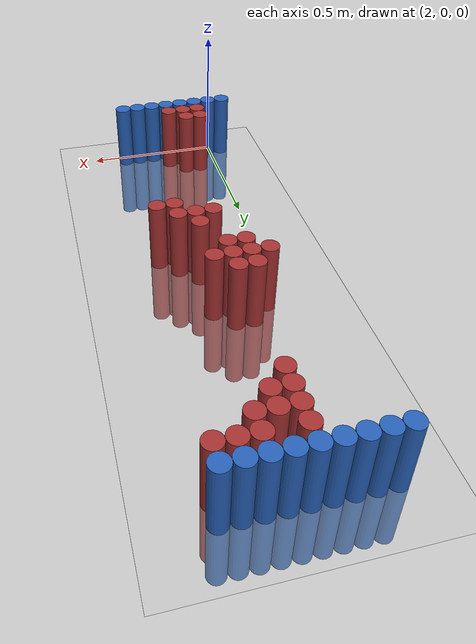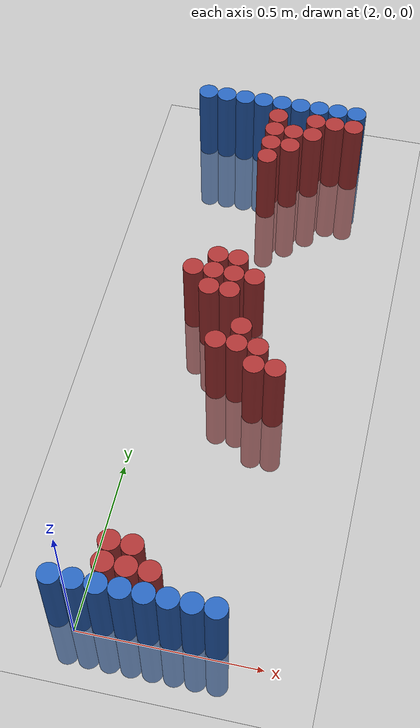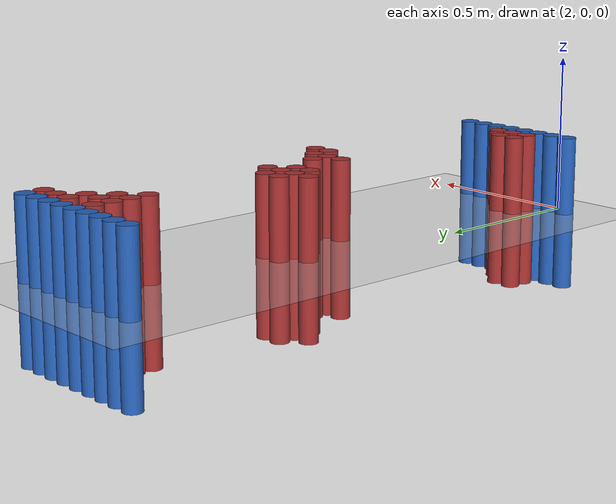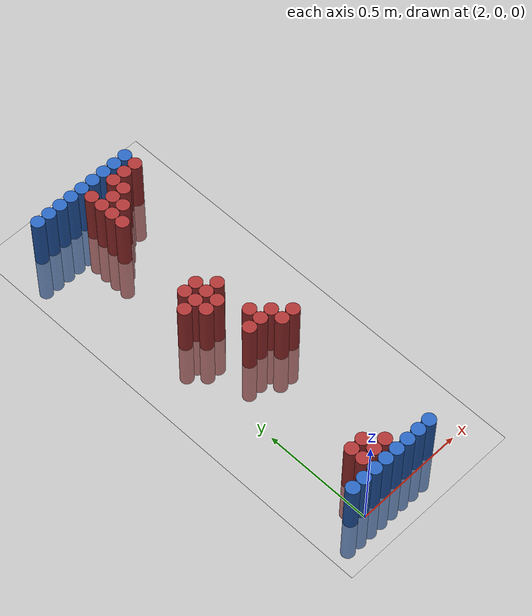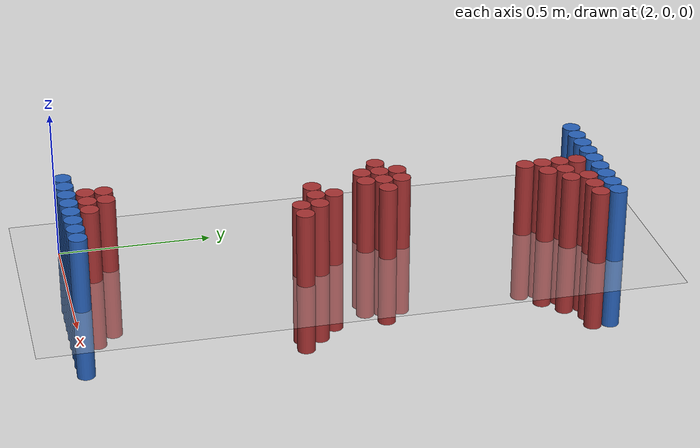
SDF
<sdf version="1.6">
 <world name="default">
  <model name="ground_plane">
   <static>1</static>
   <link name="link">
    <collision name="collision">
     <geometry><plane><normal>0 0 1</normal><size>100 100</size></plane></geometry>
     <surface><friction><ode><mu>100</mu><mu2>50</mu2></ode></friction></surface>
    </collision>
    <visual name="visual">
     <cast_shadows>0</cast_shadows>
     <geometry><plane><normal>0 0 1</normal><size>100 100</size></plane></geometry>
     <material>
      <script><uri>file://media/materials/scripts/gazebo.material</uri><name>Gazebo/Grey</name></script>
     </material>
    </visual>
   </link>
  </model>
  <model name="unit_cylinder_91">
   <static>1</static>
   <pose>1.950000 0.030000 0.000000 0.000000 0.000000 0.000000</pose>
   <link name="link">
    <inertial>
     <mass>1</mass>
     <inertia><ixx>0.145833</ixx><ixy>0</ixy><ixz>0</ixz><iyy>0.145833</iyy><iyz>0</iyz><izz>0.125</izz></inertia>
    </inertial>
    <collision name="collision">
     <geometry><cylinder><radius>0.030000</radius><length>0.5</length></cylinder></geometry>
    </collision>
    <visual name="visual">
     <geometry><cylinder><radius>0.030000</radius><length>0.5</length></cylinder></geometry>
     <material>
      <ambient>0.152000 0.379000 0.720000 1</ambient>
      <diffuse>0.152000 0.379000 0.720000 1</diffuse>
     </material>
     <material>
      <script><name>Gazebo/Grey</name><uri>file://media/materials/scripts/gazebo.material</uri></script>
     </material>
    </visual>
   </link>
  </model>
  <model name="unit_cylinder_92">
   <static>1</static>
   <pose>1.950000 1.770000 0.000000 0.000000 0.000000 0.000000</pose>
   <link name="link">
    <inertial>
     <mass>1</mass>
     <inertia><ixx>0.145833</ixx><ixy>0</ixy><ixz>0</ixz><iyy>0.145833</iyy><iyz>0</iyz><izz>0.125</izz></inertia>
    </inertial>
    <collision name="collision">
     <geometry><cylinder><radius>0.030000</radius><length>0.5</length></cylinder></geometry>
    </collision>
    <visual name="visual">
     <geometry><cylinder><radius>0.030000</radius><length>0.5</length></cylinder></geometry>
     <material>
      <ambient>0.152000 0.379000 0.720000 1</ambient>
      <diffuse>0.152000 0.379000 0.720000 1</diffuse>
     </material>
     <material>
      <script><name>Gazebo/Grey</name><uri>file://media/materials/scripts/gazebo.material</uri></script>
     </material>
    </visual>
   </link>
  </model>
  <model name="unit_cylinder_93">
   <static>1</static>
   <pose>2.010000 0.030000 0.000000 0.000000 0.000000 0.000000</pose>
   <link name="link">
    <inertial>
     <mass>1</mass>
     <inertia><ixx>0.145833</ixx><ixy>0</ixy><ixz>0</ixz><iyy>0.145833</iyy><iyz>0</iyz><izz>0.125</izz></inertia>
    </inertial>
    <collision name="collision">
     <geometry><cylinder><radius>0.030000</radius><length>0.5</length></cylinder></geometry>
    </collision>
    <visual name="visual">
     <geometry><cylinder><radius>0.030000</radius><length>0.5</length></cylinder></geometry>
     <material>
      <ambient>0.152000 0.379000 0.720000 1</ambient>
      <diffuse>0.152000 0.379000 0.720000 1</diffuse>
     </material>
     <material>
      <script><name>Gazebo/Grey</name><uri>file://media/materials/scripts/gazebo.material</uri></script>
     </material>
    </visual>
   </link>
  </model>
  <model name="unit_cylinder_94">
   <static>1</static>
   <pose>2.010000 1.770000 0.000000 0.000000 0.000000 0.000000</pose>
   <link name="link">
    <inertial>
     <mass>1</mass>
     <inertia><ixx>0.145833</ixx><ixy>0</ixy><ixz>0</ixz><iyy>0.145833</iyy><iyz>0</iyz><izz>0.125</izz></inertia>
    </inertial>
    <collision name="collision">
     <geometry><cylinder><radius>0.030000</radius><length>0.5</length></cylinder></geometry>
    </collision>
    <visual name="visual">
     <geometry><cylinder><radius>0.030000</radius><length>0.5</length></cylinder></geometry>
     <material>
      <ambient>0.152000 0.379000 0.720000 1</ambient>
      <diffuse>0.152000 0.379000 0.720000 1</diffuse>
     </material>
     <material>
      <script><name>Gazebo/Grey</name><uri>file://media/materials/scripts/gazebo.material</uri></script>
     </material>
    </visual>
   </link>
  </model>
  <model name="unit_cylinder_95">
   <static>1</static>
   <pose>2.070000 1.770000 0.000000 0.000000 0.000000 0.000000</pose>
   <link name="link">
    <inertial>
     <mass>1</mass>
     <inertia><ixx>0.145833</ixx><ixy>0</ixy><ixz>0</ixz><iyy>0.145833</iyy><iyz>0</iyz><izz>0.125</izz></inertia>
    </inertial>
    <collision name="collision">
     <geometry><cylinder><radius>0.030000</radius><length>0.5</length></cylinder></geometry>
    </collision>
    <visual name="visual">
     <geometry><cylinder><radius>0.030000</radius><length>0.5</length></cylinder></geometry>
     <material>
      <ambient>0.152000 0.379000 0.720000 1</ambient>
      <diffuse>0.152000 0.379000 0.720000 1</diffuse>
     </material>
     <material>
      <script><name>Gazebo/Grey</name><uri>file://media/materials/scripts/gazebo.material</uri></script>
     </material>
    </visual>
   </link>
  </model>
  <model name="unit_cylinder_96">
   <static>1</static>
   <pose>2.130000 1.770000 0.000000 0.000000 0.000000 0.000000</pose>
   <link name="link">
    <inertial>
     <mass>1</mass>
     <inertia><ixx>0.145833</ixx><ixy>0</ixy><ixz>0</ixz><iyy>0.145833</iyy><iyz>0</iyz><izz>0.125</izz></inertia>
    </inertial>
    <collision name="collision">
     <geometry><cylinder><radius>0.030000</radius><length>0.5</length></cylinder></geometry>
    </collision>
    <visual name="visual">
     <geometry><cylinder><radius>0.030000</radius><length>0.5</length></cylinder></geometry>
     <material>
      <ambient>0.152000 0.379000 0.720000 1</ambient>
      <diffuse>0.152000 0.379000 0.720000 1</diffuse>
     </material>
     <material>
      <script><name>Gazebo/Grey</name><uri>file://media/materials/scripts/gazebo.material</uri></script>
     </material>
    </visual>
   </link>
  </model>
  <model name="unit_cylinder_97">
   <static>1</static>
   <pose>2.190000 1.770000 0.000000 0.000000 0.000000 0.000000</pose>
   <link name="link">
    <inertial>
     <mass>1</mass>
     <inertia><ixx>0.145833</ixx><ixy>0</ixy><ixz>0</ixz><iyy>0.145833</iyy><iyz>0</iyz><izz>0.125</izz></inertia>
    </inertial>
    <collision name="collision">
     <geometry><cylinder><radius>0.030000</radius><length>0.5</length></cylinder></geometry>
    </collision>
    <visual name="visual">
     <geometry><cylinder><radius>0.030000</radius><length>0.5</length></cylinder></geometry>
     <material>
      <ambient>0.152000 0.379000 0.720000 1</ambient>
      <diffuse>0.152000 0.379000 0.720000 1</diffuse>
     </material>
     <material>
      <script><name>Gazebo/Grey</name><uri>file://media/materials/scripts/gazebo.material</uri></script>
     </material>
    </visual>
   </link>
  </model>
  <model name="unit_cylinder_98">
   <static>1</static>
   <pose>2.250000 1.770000 0.000000 0.000000 0.000000 0.000000</pose>
   <link name="link">
    <inertial>
     <mass>1</mass>
     <inertia><ixx>0.145833</ixx><ixy>0</ixy><ixz>0</ixz><iyy>0.145833</iyy><iyz>0</iyz><izz>0.125</izz></inertia>
    </inertial>
    <collision name="collision">
     <geometry><cylinder><radius>0.030000</radius><length>0.5</length></cylinder></geometry>
    </collision>
    <visual name="visual">
     <geometry><cylinder><radius>0.030000</radius><length>0.5</length></cylinder></geometry>
     <material>
      <ambient>0.152000 0.379000 0.720000 1</ambient>
      <diffuse>0.152000 0.379000 0.720000 1</diffuse>
     </material>
     <material>
      <script><name>Gazebo/Grey</name><uri>file://media/materials/scripts/gazebo.material</uri></script>
     </material>
    </visual>
   </link>
  </model>
  <model name="unit_cylinder_99">
   <static>1</static>
   <pose>2.310000 1.770000 0.000000 0.000000 0.000000 0.000000</pose>
   <link name="link">
    <inertial>
     <mass>1</mass>
     <inertia><ixx>0.145833</ixx><ixy>0</ixy><ixz>0</ixz><iyy>0.145833</iyy><iyz>0</iyz><izz>0.125</izz></inertia>
    </inertial>
    <collision name="collision">
     <geometry><cylinder><radius>0.030000</radius><length>0.5</length></cylinder></geometry>
    </collision>
    <visual name="visual">
     <geometry><cylinder><radius>0.030000</radius><length>0.5</length></cylinder></geometry>
     <material>
      <ambient>0.152000 0.379000 0.720000 1</ambient>
      <diffuse>0.152000 0.379000 0.720000 1</diffuse>
     </material>
     <material>
      <script><name>Gazebo/Grey</name><uri>file://media/materials/scripts/gazebo.material</uri></script>
     </material>
    </visual>
   </link>
  </model>
  <model name="unit_cylinder_100">
   <static>1</static>
   <pose>2.370000 1.770000 0.000000 0.000000 0.000000 0.000000</pose>
   <link name="link">
    <inertial>
     <mass>1</mass>
     <inertia><ixx>0.145833</ixx><ixy>0</ixy><ixz>0</ixz><iyy>0.145833</iyy><iyz>0</iyz><izz>0.125</izz></inertia>
    </inertial>
    <collision name="collision">
     <geometry><cylinder><radius>0.030000</radius><length>0.5</length></cylinder></geometry>
    </collision>
    <visual name="visual">
     <geometry><cylinder><radius>0.030000</radius><length>0.5</length></cylinder></geometry>
     <material>
      <ambient>0.152000 0.379000 0.720000 1</ambient>
      <diffuse>0.152000 0.379000 0.720000 1</diffuse>
     </material>
     <material>
      <script><name>Gazebo/Grey</name><uri>file://media/materials/scripts/gazebo.material</uri></script>
     </material>
    </visual>
   </link>
  </model>
  <model name="unit_cylinder_101">
   <static>1</static>
   <pose>2.430000 1.770000 0.000000 0.000000 0.000000 0.000000</pose>
   <link name="link">
    <inertial>
     <mass>1</mass>
     <inertia><ixx>0.145833</ixx><ixy>0</ixy><ixz>0</ixz><iyy>0.145833</iyy><iyz>0</iyz><izz>0.125</izz></inertia>
    </inertial>
    <collision name="collision">
     <geometry><cylinder><radius>0.030000</radius><length>0.5</length></cylinder></geometry>
    </collision>
    <visual name="visual">
     <geometry><cylinder><radius>0.030000</radius><length>0.5</length></cylinder></geometry>
     <material>
      <ambient>0.152000 0.379000 0.720000 1</ambient>
      <diffuse>0.152000 0.379000 0.720000 1</diffuse>
     </material>
     <material>
      <script><name>Gazebo/Grey</name><uri>file://media/materials/scripts/gazebo.material</uri></script>
     </material>
    </visual>
   </link>
  </model>
  <model name="unit_cylinder_125">
   <static>1</static>
   <pose>2.190000 1.710000 0.000000 0.000000 0.000000 0.000000</pose>
   <link name="link">
    <inertial>
     <mass>1</mass>
     <inertia><ixx>0.145833</ixx><ixy>0</ixy><ixz>0</ixz><iyy>0.145833</iyy><iyz>0</iyz><izz>0.125</izz></inertia>
    </inertial>
    <collision name="collision">
     <geometry><cylinder><radius>0.030000</radius><length>0.5</length></cylinder></geometry>
    </collision>
    <visual name="visual">
     <geometry><cylinder><radius>0.030000</radius><length>0.5</length></cylinder></geometry>
     <material>
      <ambient>0.648000 0.192000 0.192000 1</ambient>
      <diffuse>0.648000 0.192000 0.192000 1</diffuse>
     </material>
     <material>
      <script><name>Gazebo/Grey</name><uri>file://media/materials/scripts/gazebo.material</uri></script>
     </material>
    </visual>
   </link>
  </model>
  <model name="unit_cylinder_126">
   <static>1</static>
   <pose>2.310000 1.710000 0.000000 0.000000 0.000000 0.000000</pose>
   <link name="link">
    <inertial>
     <mass>1</mass>
     <inertia><ixx>0.145833</ixx><ixy>0</ixy><ixz>0</ixz><iyy>0.145833</iyy><iyz>0</iyz><izz>0.125</izz></inertia>
    </inertial>
    <collision name="collision">
     <geometry><cylinder><radius>0.030000</radius><length>0.5</length></cylinder></geometry>
    </collision>
    <visual name="visual">
     <geometry><cylinder><radius>0.030000</radius><length>0.5</length></cylinder></geometry>
     <material>
      <ambient>0.648000 0.192000 0.192000 1</ambient>
      <diffuse>0.648000 0.192000 0.192000 1</diffuse>
     </material>
     <material>
      <script><name>Gazebo/Grey</name><uri>file://media/materials/scripts/gazebo.material</uri></script>
     </material>
    </visual>
   </link>
  </model>
  <model name="unit_cylinder_127">
   <static>1</static>
   <pose>2.370000 1.710000 0.000000 0.000000 0.000000 0.000000</pose>
   <link name="link">
    <inertial>
     <mass>1</mass>
     <inertia><ixx>0.145833</ixx><ixy>0</ixy><ixz>0</ixz><iyy>0.145833</iyy><iyz>0</iyz><izz>0.125</izz></inertia>
    </inertial>
    <collision name="collision">
     <geometry><cylinder><radius>0.030000</radius><length>0.5</length></cylinder></geometry>
    </collision>
    <visual name="visual">
     <geometry><cylinder><radius>0.030000</radius><length>0.5</length></cylinder></geometry>
     <material>
      <ambient>0.648000 0.192000 0.192000 1</ambient>
      <diffuse>0.648000 0.192000 0.192000 1</diffuse>
     </material>
     <material>
      <script><name>Gazebo/Grey</name><uri>file://media/materials/scripts/gazebo.material</uri></script>
     </material>
    </visual>
   </link>
  </model>
  <model name="unit_cylinder_128">
   <static>1</static>
   <pose>2.430000 1.710000 0.000000 0.000000 0.000000 0.000000</pose>
   <link name="link">
    <inertial>
     <mass>1</mass>
     <inertia><ixx>0.145833</ixx><ixy>0</ixy><ixz>0</ixz><iyy>0.145833</iyy><iyz>0</iyz><izz>0.125</izz></inertia>
    </inertial>
    <collision name="collision">
     <geometry><cylinder><radius>0.030000</radius><length>0.5</length></cylinder></geometry>
    </collision>
    <visual name="visual">
     <geometry><cylinder><radius>0.030000</radius><length>0.5</length></cylinder></geometry>
     <material>
      <ambient>0.648000 0.192000 0.192000 1</ambient>
      <diffuse>0.648000 0.192000 0.192000 1</diffuse>
     </material>
     <material>
      <script><name>Gazebo/Grey</name><uri>file://media/materials/scripts/gazebo.material</uri></script>
     </material>
    </visual>
   </link>
  </model>
  <model name="unit_cylinder_142">
   <static>1</static>
   <pose>2.190000 1.650000 0.000000 0.000000 0.000000 0.000000</pose>
   <link name="link">
    <inertial>
     <mass>1</mass>
     <inertia><ixx>0.145833</ixx><ixy>0</ixy><ixz>0</ixz><iyy>0.145833</iyy><iyz>0</iyz><izz>0.125</izz></inertia>
    </inertial>
    <collision name="collision">
     <geometry><cylinder><radius>0.030000</radius><length>0.5</length></cylinder></geometry>
    </collision>
    <visual name="visual">
     <geometry><cylinder><radius>0.030000</radius><length>0.5</length></cylinder></geometry>
     <material>
      <ambient>0.648000 0.192000 0.192000 1</ambient>
      <diffuse>0.648000 0.192000 0.192000 1</diffuse>
     </material>
     <material>
      <script><name>Gazebo/Grey</name><uri>file://media/materials/scripts/gazebo.material</uri></script>
     </material>
    </visual>
   </link>
  </model>
  <model name="unit_cylinder_143">
   <static>1</static>
   <pose>2.250000 1.650000 0.000000 0.000000 0.000000 0.000000</pose>
   <link name="link">
    <inertial>
     <mass>1</mass>
     <inertia><ixx>0.145833</ixx><ixy>0</ixy><ixz>0</ixz><iyy>0.145833</iyy><iyz>0</iyz><izz>0.125</izz></inertia>
    </inertial>
    <collision name="collision">
     <geometry><cylinder><radius>0.030000</radius><length>0.5</length></cylinder></geometry>
    </collision>
    <visual name="visual">
     <geometry><cylinder><radius>0.030000</radius><length>0.5</length></cylinder></geometry>
     <material>
      <ambient>0.648000 0.192000 0.192000 1</ambient>
      <diffuse>0.648000 0.192000 0.192000 1</diffuse>
     </material>
     <material>
      <script><name>Gazebo/Grey</name><uri>file://media/materials/scripts/gazebo.material</uri></script>
     </material>
    </visual>
   </link>
  </model>
  <model name="unit_cylinder_144">
   <static>1</static>
   <pose>2.310000 1.650000 0.000000 0.000000 0.000000 0.000000</pose>
   <link name="link">
    <inertial>
     <mass>1</mass>
     <inertia><ixx>0.145833</ixx><ixy>0</ixy><ixz>0</ixz><iyy>0.145833</iyy><iyz>0</iyz><izz>0.125</izz></inertia>
    </inertial>
    <collision name="collision">
     <geometry><cylinder><radius>0.030000</radius><length>0.5</length></cylinder></geometry>
    </collision>
    <visual name="visual">
     <geometry><cylinder><radius>0.030000</radius><length>0.5</length></cylinder></geometry>
     <material>
      <ambient>0.648000 0.192000 0.192000 1</ambient>
      <diffuse>0.648000 0.192000 0.192000 1</diffuse>
     </material>
     <material>
      <script><name>Gazebo/Grey</name><uri>file://media/materials/scripts/gazebo.material</uri></script>
     </material>
    </visual>
   </link>
  </model>
  <model name="unit_cylinder_148">
   <static>1</static>
   <pose>2.190000 1.590000 0.000000 0.000000 0.000000 0.000000</pose>
   <link name="link">
    <inertial>
     <mass>1</mass>
     <inertia><ixx>0.145833</ixx><ixy>0</ixy><ixz>0</ixz><iyy>0.145833</iyy><iyz>0</iyz><izz>0.125</izz></inertia>
    </inertial>
    <collision name="collision">
     <geometry><cylinder><radius>0.030000</radius><length>0.5</length></cylinder></geometry>
    </collision>
    <visual name="visual">
     <geometry><cylinder><radius>0.030000</radius><length>0.5</length></cylinder></geometry>
     <material>
      <ambient>0.648000 0.192000 0.192000 1</ambient>
      <diffuse>0.648000 0.192000 0.192000 1</diffuse>
     </material>
     <material>
      <script><name>Gazebo/Grey</name><uri>file://media/materials/scripts/gazebo.material</uri></script>
     </material>
    </visual>
   </link>
  </model>
  <model name="unit_cylinder_149">
   <static>1</static>
   <pose>2.250000 1.590000 0.000000 0.000000 0.000000 0.000000</pose>
   <link name="link">
    <inertial>
     <mass>1</mass>
     <inertia><ixx>0.145833</ixx><ixy>0</ixy><ixz>0</ixz><iyy>0.145833</iyy><iyz>0</iyz><izz>0.125</izz></inertia>
    </inertial>
    <collision name="collision">
     <geometry><cylinder><radius>0.030000</radius><length>0.5</length></cylinder></geometry>
    </collision>
    <visual name="visual">
     <geometry><cylinder><radius>0.030000</radius><length>0.5</length></cylinder></geometry>
     <material>
      <ambient>0.648000 0.192000 0.192000 1</ambient>
      <diffuse>0.648000 0.192000 0.192000 1</diffuse>
     </material>
     <material>
      <script><name>Gazebo/Grey</name><uri>file://media/materials/scripts/gazebo.material</uri></script>
     </material>
    </visual>
   </link>
  </model>
  <model name="unit_cylinder_151">
   <static>1</static>
   <pose>2.190000 1.530000 0.000000 0.000000 0.000000 0.000000</pose>
   <link name="link">
    <inertial>
     <mass>1</mass>
     <inertia><ixx>0.145833</ixx><ixy>0</ixy><ixz>0</ixz><iyy>0.145833</iyy><iyz>0</iyz><izz>0.125</izz></inertia>
    </inertial>
    <collision name="collision">
     <geometry><cylinder><radius>0.030000</radius><length>0.5</length></cylinder></geometry>
    </collision>
    <visual name="visual">
     <geometry><cylinder><radius>0.030000</radius><length>0.5</length></cylinder></geometry>
     <material>
      <ambient>0.648000 0.192000 0.192000 1</ambient>
      <diffuse>0.648000 0.192000 0.192000 1</diffuse>
     </material>
     <material>
      <script><name>Gazebo/Grey</name><uri>file://media/materials/scripts/gazebo.material</uri></script>
     </material>
    </visual>
   </link>
  </model>
  <model name="unit_cylinder_165">
   <static>1</static>
   <pose>2.130000 1.110000 0.000000 0.000000 0.000000 0.000000</pose>
   <link name="link">
    <inertial>
     <mass>1</mass>
     <inertia><ixx>0.145833</ixx><ixy>0</ixy><ixz>0</ixz><iyy>0.145833</iyy><iyz>0</iyz><izz>0.125</izz></inertia>
    </inertial>
    <collision name="collision">
     <geometry><cylinder><radius>0.030000</radius><length>0.5</length></cylinder></geometry>
    </collision>
    <visual name="visual">
     <geometry><cylinder><radius>0.030000</radius><length>0.5</length></cylinder></geometry>
     <material>
      <ambient>0.648000 0.192000 0.192000 1</ambient>
      <diffuse>0.648000 0.192000 0.192000 1</diffuse>
     </material>
     <material>
      <script><name>Gazebo/Grey</name><uri>file://media/materials/scripts/gazebo.material</uri></script>
     </material>
    </visual>
   </link>
  </model>
  <model name="unit_cylinder_166">
   <static>1</static>
   <pose>2.190000 1.110000 0.000000 0.000000 0.000000 0.000000</pose>
   <link name="link">
    <inertial>
     <mass>1</mass>
     <inertia><ixx>0.145833</ixx><ixy>0</ixy><ixz>0</ixz><iyy>0.145833</iyy><iyz>0</iyz><izz>0.125</izz></inertia>
    </inertial>
    <collision name="collision">
     <geometry><cylinder><radius>0.030000</radius><length>0.5</length></cylinder></geometry>
    </collision>
    <visual name="visual">
     <geometry><cylinder><radius>0.030000</radius><length>0.5</length></cylinder></geometry>
     <material>
      <ambient>0.648000 0.192000 0.192000 1</ambient>
      <diffuse>0.648000 0.192000 0.192000 1</diffuse>
     </material>
     <material>
      <script><name>Gazebo/Grey</name><uri>file://media/materials/scripts/gazebo.material</uri></script>
     </material>
    </visual>
   </link>
  </model>
  <model name="unit_cylinder_167">
   <static>1</static>
   <pose>2.070000 1.050000 0.000000 0.000000 0.000000 0.000000</pose>
   <link name="link">
    <inertial>
     <mass>1</mass>
     <inertia><ixx>0.145833</ixx><ixy>0</ixy><ixz>0</ixz><iyy>0.145833</iyy><iyz>0</iyz><izz>0.125</izz></inertia>
    </inertial>
    <collision name="collision">
     <geometry><cylinder><radius>0.030000</radius><length>0.5</length></cylinder></geometry>
    </collision>
    <visual name="visual">
     <geometry><cylinder><radius>0.030000</radius><length>0.5</length></cylinder></geometry>
     <material>
      <ambient>0.648000 0.192000 0.192000 1</ambient>
      <diffuse>0.648000 0.192000 0.192000 1</diffuse>
     </material>
     <material>
      <script><name>Gazebo/Grey</name><uri>file://media/materials/scripts/gazebo.material</uri></script>
     </material>
    </visual>
   </link>
  </model>
  <model name="unit_cylinder_168">
   <static>1</static>
   <pose>2.130000 1.050000 0.000000 0.000000 0.000000 0.000000</pose>
   <link name="link">
    <inertial>
     <mass>1</mass>
     <inertia><ixx>0.145833</ixx><ixy>0</ixy><ixz>0</ixz><iyy>0.145833</iyy><iyz>0</iyz><izz>0.125</izz></inertia>
    </inertial>
    <collision name="collision">
     <geometry><cylinder><radius>0.030000</radius><length>0.5</length></cylinder></geometry>
    </collision>
    <visual name="visual">
     <geometry><cylinder><radius>0.030000</radius><length>0.5</length></cylinder></geometry>
     <material>
      <ambient>0.648000 0.192000 0.192000 1</ambient>
      <diffuse>0.648000 0.192000 0.192000 1</diffuse>
     </material>
     <material>
      <script><name>Gazebo/Grey</name><uri>file://media/materials/scripts/gazebo.material</uri></script>
     </material>
    </visual>
   </link>
  </model>
  <model name="unit_cylinder_169">
   <static>1</static>
   <pose>2.190000 1.050000 0.000000 0.000000 0.000000 0.000000</pose>
   <link name="link">
    <inertial>
     <mass>1</mass>
     <inertia><ixx>0.145833</ixx><ixy>0</ixy><ixz>0</ixz><iyy>0.145833</iyy><iyz>0</iyz><izz>0.125</izz></inertia>
    </inertial>
    <collision name="collision">
     <geometry><cylinder><radius>0.030000</radius><length>0.5</length></cylinder></geometry>
    </collision>
    <visual name="visual">
     <geometry><cylinder><radius>0.030000</radius><length>0.5</length></cylinder></geometry>
     <material>
      <ambient>0.648000 0.192000 0.192000 1</ambient>
      <diffuse>0.648000 0.192000 0.192000 1</diffuse>
     </material>
     <material>
      <script><name>Gazebo/Grey</name><uri>file://media/materials/scripts/gazebo.material</uri></script>
     </material>
    </visual>
   </link>
  </model>
  <model name="unit_cylinder_170">
   <static>1</static>
   <pose>2.250000 1.050000 0.000000 0.000000 0.000000 0.000000</pose>
   <link name="link">
    <inertial>
     <mass>1</mass>
     <inertia><ixx>0.145833</ixx><ixy>0</ixy><ixz>0</ixz><iyy>0.145833</iyy><iyz>0</iyz><izz>0.125</izz></inertia>
    </inertial>
    <collision name="collision">
     <geometry><cylinder><radius>0.030000</radius><length>0.5</length></cylinder></geometry>
    </collision>
    <visual name="visual">
     <geometry><cylinder><radius>0.030000</radius><length>0.5</length></cylinder></geometry>
     <material>
      <ambient>0.648000 0.192000 0.192000 1</ambient>
      <diffuse>0.648000 0.192000 0.192000 1</diffuse>
     </material>
     <material>
      <script><name>Gazebo/Grey</name><uri>file://media/materials/scripts/gazebo.material</uri></script>
     </material>
    </visual>
   </link>
  </model>
  <model name="unit_cylinder_172">
   <static>1</static>
   <pose>2.130000 0.990000 0.000000 0.000000 0.000000 0.000000</pose>
   <link name="link">
    <inertial>
     <mass>1</mass>
     <inertia><ixx>0.145833</ixx><ixy>0</ixy><ixz>0</ixz><iyy>0.145833</iyy><iyz>0</iyz><izz>0.125</izz></inertia>
    </inertial>
    <collision name="collision">
     <geometry><cylinder><radius>0.030000</radius><length>0.5</length></cylinder></geometry>
    </collision>
    <visual name="visual">
     <geometry><cylinder><radius>0.030000</radius><length>0.5</length></cylinder></geometry>
     <material>
      <ambient>0.648000 0.192000 0.192000 1</ambient>
      <diffuse>0.648000 0.192000 0.192000 1</diffuse>
     </material>
     <material>
      <script><name>Gazebo/Grey</name><uri>file://media/materials/scripts/gazebo.material</uri></script>
     </material>
    </visual>
   </link>
  </model>
  <model name="unit_cylinder_173">
   <static>1</static>
   <pose>2.190000 0.990000 0.000000 0.000000 0.000000 0.000000</pose>
   <link name="link">
    <inertial>
     <mass>1</mass>
     <inertia><ixx>0.145833</ixx><ixy>0</ixy><ixz>0</ixz><iyy>0.145833</iyy><iyz>0</iyz><izz>0.125</izz></inertia>
    </inertial>
    <collision name="collision">
     <geometry><cylinder><radius>0.030000</radius><length>0.5</length></cylinder></geometry>
    </collision>
    <visual name="visual">
     <geometry><cylinder><radius>0.030000</radius><length>0.5</length></cylinder></geometry>
     <material>
      <ambient>0.648000 0.192000 0.192000 1</ambient>
      <diffuse>0.648000 0.192000 0.192000 1</diffuse>
     </material>
     <material>
      <script><name>Gazebo/Grey</name><uri>file://media/materials/scripts/gazebo.material</uri></script>
     </material>
    </visual>
   </link>
  </model>
  <model name="unit_cylinder_182">
   <static>1</static>
   <pose>2.250000 0.870000 0.000000 0.000000 0.000000 0.000000</pose>
   <link name="link">
    <inertial>
     <mass>1</mass>
     <inertia><ixx>0.145833</ixx><ixy>0</ixy><ixz>0</ixz><iyy>0.145833</iyy><iyz>0</iyz><izz>0.125</izz></inertia>
    </inertial>
    <collision name="collision">
     <geometry><cylinder><radius>0.030000</radius><length>0.5</length></cylinder></geometry>
    </collision>
    <visual name="visual">
     <geometry><cylinder><radius>0.030000</radius><length>0.5</length></cylinder></geometry>
     <material>
      <ambient>0.648000 0.192000 0.192000 1</ambient>
      <diffuse>0.648000 0.192000 0.192000 1</diffuse>
     </material>
     <material>
      <script><name>Gazebo/Grey</name><uri>file://media/materials/scripts/gazebo.material</uri></script>
     </material>
    </visual>
   </link>
  </model>
  <model name="unit_cylinder_183">
   <static>1</static>
   <pose>2.190000 0.810000 0.000000 0.000000 0.000000 0.000000</pose>
   <link name="link">
    <inertial>
     <mass>1</mass>
     <inertia><ixx>0.145833</ixx><ixy>0</ixy><ixz>0</ixz><iyy>0.145833</iyy><iyz>0</iyz><izz>0.125</izz></inertia>
    </inertial>
    <collision name="collision">
     <geometry><cylinder><radius>0.030000</radius><length>0.5</length></cylinder></geometry>
    </collision>
    <visual name="visual">
     <geometry><cylinder><radius>0.030000</radius><length>0.5</length></cylinder></geometry>
     <material>
      <ambient>0.648000 0.192000 0.192000 1</ambient>
      <diffuse>0.648000 0.192000 0.192000 1</diffuse>
     </material>
     <material>
      <script><name>Gazebo/Grey</name><uri>file://media/materials/scripts/gazebo.material</uri></script>
     </material>
    </visual>
   </link>
  </model>
  <model name="unit_cylinder_184">
   <static>1</static>
   <pose>2.250000 0.810000 0.000000 0.000000 0.000000 0.000000</pose>
   <link name="link">
    <inertial>
     <mass>1</mass>
     <inertia><ixx>0.145833</ixx><ixy>0</ixy><ixz>0</ixz><iyy>0.145833</iyy><iyz>0</iyz><izz>0.125</izz></inertia>
    </inertial>
    <collision name="collision">
     <geometry><cylinder><radius>0.030000</radius><length>0.5</length></cylinder></geometry>
    </collision>
    <visual name="visual">
     <geometry><cylinder><radius>0.030000</radius><length>0.5</length></cylinder></geometry>
     <material>
      <ambient>0.648000 0.192000 0.192000 1</ambient>
      <diffuse>0.648000 0.192000 0.192000 1</diffuse>
     </material>
     <material>
      <script><name>Gazebo/Grey</name><uri>file://media/materials/scripts/gazebo.material</uri></script>
     </material>
    </visual>
   </link>
  </model>
  <model name="unit_cylinder_185">
   <static>1</static>
   <pose>2.310000 0.810000 0.000000 0.000000 0.000000 0.000000</pose>
   <link name="link">
    <inertial>
     <mass>1</mass>
     <inertia><ixx>0.145833</ixx><ixy>0</ixy><ixz>0</ixz><iyy>0.145833</iyy><iyz>0</iyz><izz>0.125</izz></inertia>
    </inertial>
    <collision name="collision">
     <geometry><cylinder><radius>0.030000</radius><length>0.5</length></cylinder></geometry>
    </collision>
    <visual name="visual">
     <geometry><cylinder><radius>0.030000</radius><length>0.5</length></cylinder></geometry>
     <material>
      <ambient>0.648000 0.192000 0.192000 1</ambient>
      <diffuse>0.648000 0.192000 0.192000 1</diffuse>
     </material>
     <material>
      <script><name>Gazebo/Grey</name><uri>file://media/materials/scripts/gazebo.material</uri></script>
     </material>
    </visual>
   </link>
  </model>
  <model name="unit_cylinder_186">
   <static>1</static>
   <pose>2.310000 0.750000 0.000000 0.000000 0.000000 0.000000</pose>
   <link name="link">
    <inertial>
     <mass>1</mass>
     <inertia><ixx>0.145833</ixx><ixy>0</ixy><ixz>0</ixz><iyy>0.145833</iyy><iyz>0</iyz><izz>0.125</izz></inertia>
    </inertial>
    <collision name="collision">
     <geometry><cylinder><radius>0.030000</radius><length>0.5</length></cylinder></geometry>
    </collision>
    <visual name="visual">
     <geometry><cylinder><radius>0.030000</radius><length>0.5</length></cylinder></geometry>
     <material>
      <ambient>0.648000 0.192000 0.192000 1</ambient>
      <diffuse>0.648000 0.192000 0.192000 1</diffuse>
     </material>
     <material>
      <script><name>Gazebo/Grey</name><uri>file://media/materials/scripts/gazebo.material</uri></script>
     </material>
    </visual>
   </link>
  </model>
  <model name="unit_cylinder_187">
   <static>1</static>
   <pose>2.370000 0.750000 0.000000 0.000000 0.000000 0.000000</pose>
   <link name="link">
    <inertial>
     <mass>1</mass>
     <inertia><ixx>0.145833</ixx><ixy>0</ixy><ixz>0</ixz><iyy>0.145833</iyy><iyz>0</iyz><izz>0.125</izz></inertia>
    </inertial>
    <collision name="collision">
     <geometry><cylinder><radius>0.030000</radius><length>0.5</length></cylinder></geometry>
    </collision>
    <visual name="visual">
     <geometry><cylinder><radius>0.030000</radius><length>0.5</length></cylinder></geometry>
     <material>
      <ambient>0.648000 0.192000 0.192000 1</ambient>
      <diffuse>0.648000 0.192000 0.192000 1</diffuse>
     </material>
     <material>
      <script><name>Gazebo/Grey</name><uri>file://media/materials/scripts/gazebo.material</uri></script>
     </material>
    </visual>
   </link>
  </model>
  <model name="unit_cylinder_188">
   <static>1</static>
   <pose>2.070000 0.150000 0.000000 0.000000 0.000000 0.000000</pose>
   <link name="link">
    <inertial>
     <mass>1</mass>
     <inertia><ixx>0.145833</ixx><ixy>0</ixy><ixz>0</ixz><iyy>0.145833</iyy><iyz>0</iyz><izz>0.125</izz></inertia>
    </inertial>
    <collision name="collision">
     <geometry><cylinder><radius>0.030000</radius><length>0.5</length></cylinder></geometry>
    </collision>
    <visual name="visual">
     <geometry><cylinder><radius>0.030000</radius><length>0.5</length></cylinder></geometry>
     <material>
      <ambient>0.648000 0.192000 0.192000 1</ambient>
      <diffuse>0.648000 0.192000 0.192000 1</diffuse>
     </material>
     <material>
      <script><name>Gazebo/Grey</name><uri>file://media/materials/scripts/gazebo.material</uri></script>
     </material>
    </visual>
   </link>
  </model>
  <model name="unit_cylinder_189">
   <static>1</static>
   <pose>2.130000 0.150000 0.000000 0.000000 0.000000 0.000000</pose>
   <link name="link">
    <inertial>
     <mass>1</mass>
     <inertia><ixx>0.145833</ixx><ixy>0</ixy><ixz>0</ixz><iyy>0.145833</iyy><iyz>0</iyz><izz>0.125</izz></inertia>
    </inertial>
    <collision name="collision">
     <geometry><cylinder><radius>0.030000</radius><length>0.5</length></cylinder></geometry>
    </collision>
    <visual name="visual">
     <geometry><cylinder><radius>0.030000</radius><length>0.5</length></cylinder></geometry>
     <material>
      <ambient>0.648000 0.192000 0.192000 1</ambient>
      <diffuse>0.648000 0.192000 0.192000 1</diffuse>
     </material>
     <material>
      <script><name>Gazebo/Grey</name><uri>file://media/materials/scripts/gazebo.material</uri></script>
     </material>
    </visual>
   </link>
  </model>
  <model name="unit_cylinder_191">
   <static>1</static>
   <pose>2.070000 0.090000 0.000000 0.000000 0.000000 0.000000</pose>
   <link name="link">
    <inertial>
     <mass>1</mass>
     <inertia><ixx>0.145833</ixx><ixy>0</ixy><ixz>0</ixz><iyy>0.145833</iyy><iyz>0</iyz><izz>0.125</izz></inertia>
    </inertial>
    <collision name="collision">
     <geometry><cylinder><radius>0.030000</radius><length>0.5</length></cylinder></geometry>
    </collision>
    <visual name="visual">
     <geometry><cylinder><radius>0.030000</radius><length>0.5</length></cylinder></geometry>
     <material>
      <ambient>0.648000 0.192000 0.192000 1</ambient>
      <diffuse>0.648000 0.192000 0.192000 1</diffuse>
     </material>
     <material>
      <script><name>Gazebo/Grey</name><uri>file://media/materials/scripts/gazebo.material</uri></script>
     </material>
    </visual>
   </link>
  </model>
  <model name="unit_cylinder_192">
   <static>1</static>
   <pose>2.130000 0.090000 0.000000 0.000000 0.000000 0.000000</pose>
   <link name="link">
    <inertial>
     <mass>1</mass>
     <inertia><ixx>0.145833</ixx><ixy>0</ixy><ixz>0</ixz><iyy>0.145833</iyy><iyz>0</iyz><izz>0.125</izz></inertia>
    </inertial>
    <collision name="collision">
     <geometry><cylinder><radius>0.030000</radius><length>0.5</length></cylinder></geometry>
    </collision>
    <visual name="visual">
     <geometry><cylinder><radius>0.030000</radius><length>0.5</length></cylinder></geometry>
     <material>
      <ambient>0.648000 0.192000 0.192000 1</ambient>
      <diffuse>0.648000 0.192000 0.192000 1</diffuse>
     </material>
     <material>
      <script><name>Gazebo/Grey</name><uri>file://media/materials/scripts/gazebo.material</uri></script>
     </material>
    </visual>
   </link>
  </model>
  <model name="unit_cylinder_193">
   <static>1</static>
   <pose>2.190000 0.090000 0.000000 0.000000 0.000000 0.000000</pose>
   <link name="link">
    <inertial>
     <mass>1</mass>
     <inertia><ixx>0.145833</ixx><ixy>0</ixy><ixz>0</ixz><iyy>0.145833</iyy><iyz>0</iyz><izz>0.125</izz></inertia>
    </inertial>
    <collision name="collision">
     <geometry><cylinder><radius>0.030000</radius><length>0.5</length></cylinder></geometry>
    </collision>
    <visual name="visual">
     <geometry><cylinder><radius>0.030000</radius><length>0.5</length></cylinder></geometry>
     <material>
      <ambient>0.648000 0.192000 0.192000 1</ambient>
      <diffuse>0.648000 0.192000 0.192000 1</diffuse>
     </material>
     <material>
      <script><name>Gazebo/Grey</name><uri>file://media/materials/scripts/gazebo.material</uri></script>
     </material>
    </visual>
   </link>
  </model>
  <model name="unit_cylinder_198">
   <static>1</static>
   <pose>2.070000 0.030000 0.000000 0.000000 0.000000 0.000000</pose>
   <link name="link">
    <inertial>
     <mass>1</mass>
     <inertia><ixx>0.145833</ixx><ixy>0</ixy><ixz>0</ixz><iyy>0.145833</iyy><iyz>0</iyz><izz>0.125</izz></inertia>
    </inertial>
    <collision name="collision">
     <geometry><cylinder><radius>0.030000</radius><length>0.5</length></cylinder></geometry>
    </collision>
    <visual name="visual">
     <geometry><cylinder><radius>0.030000</radius><length>0.5</length></cylinder></geometry>
     <material>
      <ambient>0.152000 0.379000 0.720000 1</ambient>
      <diffuse>0.152000 0.379000 0.720000 1</diffuse>
     </material>
     <material>
      <script><name>Gazebo/Grey</name><uri>file://media/materials/scripts/gazebo.material</uri></script>
     </material>
    </visual>
   </link>
  </model>
  <model name="unit_cylinder_199">
   <static>1</static>
   <pose>2.130000 0.030000 0.000000 0.000000 0.000000 0.000000</pose>
   <link name="link">
    <inertial>
     <mass>1</mass>
     <inertia><ixx>0.145833</ixx><ixy>0</ixy><ixz>0</ixz><iyy>0.145833</iyy><iyz>0</iyz><izz>0.125</izz></inertia>
    </inertial>
    <collision name="collision">
     <geometry><cylinder><radius>0.030000</radius><length>0.5</length></cylinder></geometry>
    </collision>
    <visual name="visual">
     <geometry><cylinder><radius>0.030000</radius><length>0.5</length></cylinder></geometry>
     <material>
      <ambient>0.152000 0.379000 0.720000 1</ambient>
      <diffuse>0.152000 0.379000 0.720000 1</diffuse>
     </material>
     <material>
      <script><name>Gazebo/Grey</name><uri>file://media/materials/scripts/gazebo.material</uri></script>
     </material>
    </visual>
   </link>
  </model>
  <model name="unit_cylinder_200">
   <static>1</static>
   <pose>2.190000 0.030000 0.000000 0.000000 0.000000 0.000000</pose>
   <link name="link">
    <inertial>
     <mass>1</mass>
     <inertia><ixx>0.145833</ixx><ixy>0</ixy><ixz>0</ixz><iyy>0.145833</iyy><iyz>0</iyz><izz>0.125</izz></inertia>
    </inertial>
    <collision name="collision">
     <geometry><cylinder><radius>0.030000</radius><length>0.5</length></cylinder></geometry>
    </collision>
    <visual name="visual">
     <geometry><cylinder><radius>0.030000</radius><length>0.5</length></cylinder></geometry>
     <material>
      <ambient>0.152000 0.379000 0.720000 1</ambient>
      <diffuse>0.152000 0.379000 0.720000 1</diffuse>
     </material>
     <material>
      <script><name>Gazebo/Grey</name><uri>file://media/materials/scripts/gazebo.material</uri></script>
     </material>
    </visual>
   </link>
  </model>
  <model name="unit_cylinder_201">
   <static>1</static>
   <pose>2.250000 0.030000 0.000000 0.000000 0.000000 0.000000</pose>
   <link name="link">
    <inertial>
     <mass>1</mass>
     <inertia><ixx>0.145833</ixx><ixy>0</ixy><ixz>0</ixz><iyy>0.145833</iyy><iyz>0</iyz><izz>0.125</izz></inertia>
    </inertial>
    <collision name="collision">
     <geometry><cylinder><radius>0.030000</radius><length>0.5</length></cylinder></geometry>
    </collision>
    <visual name="visual">
     <geometry><cylinder><radius>0.030000</radius><length>0.5</length></cylinder></geometry>
     <material>
      <ambient>0.152000 0.379000 0.720000 1</ambient>
      <diffuse>0.152000 0.379000 0.720000 1</diffuse>
     </material>
     <material>
      <script><name>Gazebo/Grey</name><uri>file://media/materials/scripts/gazebo.material</uri></script>
     </material>
    </visual>
   </link>
  </model>
  <model name="unit_cylinder_202">
   <static>1</static>
   <pose>2.310000 0.030000 0.000000 0.000000 0.000000 0.000000</pose>
   <link name="link">
    <inertial>
     <mass>1</mass>
     <inertia><ixx>0.145833</ixx><ixy>0</ixy><ixz>0</ixz><iyy>0.145833</iyy><iyz>0</iyz><izz>0.125</izz></inertia>
    </inertial>
    <collision name="collision">
     <geometry><cylinder><radius>0.030000</radius><length>0.5</length></cylinder></geometry>
    </collision>
    <visual name="visual">
     <geometry><cylinder><radius>0.030000</radius><length>0.5</length></cylinder></geometry>
     <material>
      <ambient>0.152000 0.379000 0.720000 1</ambient>
      <diffuse>0.152000 0.379000 0.720000 1</diffuse>
     </material>
     <material>
      <script><name>Gazebo/Grey</name><uri>file://media/materials/scripts/gazebo.material</uri></script>
     </material>
    </visual>
   </link>
  </model>
  <model name="unit_cylinder_203">
   <static>1</static>
   <pose>2.370000 0.030000 0.000000 0.000000 0.000000 0.000000</pose>
   <link name="link">
    <inertial>
     <mass>1</mass>
     <inertia><ixx>0.145833</ixx><ixy>0</ixy><ixz>0</ixz><iyy>0.145833</iyy><iyz>0</iyz><izz>0.125</izz></inertia>
    </inertial>
    <collision name="collision">
     <geometry><cylinder><radius>0.030000</radius><length>0.5</length></cylinder></geometry>
    </collision>
    <visual name="visual">
     <geometry><cylinder><radius>0.030000</radius><length>0.5</length></cylinder></geometry>
     <material>
      <ambient>0.152000 0.379000 0.720000 1</ambient>
      <diffuse>0.152000 0.379000 0.720000 1</diffuse>
     </material>
     <material>
      <script><name>Gazebo/Grey</name><uri>file://media/materials/scripts/gazebo.material</uri></script>
     </material>
    </visual>
   </link>
  </model>
 </world>
</sdf>
